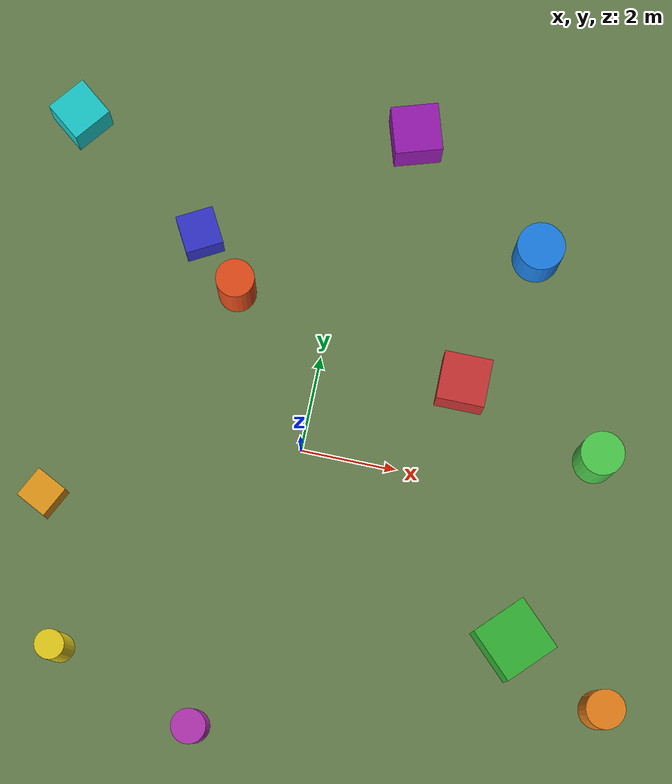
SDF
<?xml version="1.0" ?>
<sdf version="1.9">
  <world name="data_collection">

    <physics name="1ms" type="ignored">
      <max_step_size>0.001</max_step_size>
      <real_time_factor>1.0</real_time_factor>
    </physics>

    <plugin filename="gz-sim-physics-system"        name="gz::sim::systems::Physics"/>
    <plugin filename="gz-sim-sensors-system"         name="gz::sim::systems::Sensors">
      <render_engine>ogre2</render_engine>
    </plugin>
    <plugin filename="gz-sim-scene-broadcaster-system" name="gz::sim::systems::SceneBroadcaster"/>
    <plugin filename="gz-sim-user-commands-system"   name="gz::sim::systems::UserCommands"/>

    <scene>
      <ambient>0.4 0.4 0.4 1</ambient>
      <background>0.53 0.81 0.98 1</background>
      <sky>
        <time>10</time>
        <clouds><speed>12</speed><mean_size>0.5</mean_size></clouds>
      </sky>
      <shadows>true</shadows>
    </scene>

    <light name="sun" type="directional">
      <cast_shadows>true</cast_shadows>
      <diffuse>1.0 0.95 0.85 1</diffuse>
      <specular>0.3 0.3 0.3 1</specular>
      <direction>-0.3 0.1 -0.95</direction>
    </light>

    <!-- Ground -->
    <model name="ground_plane">
      <static>true</static>
      <link name="link">
        <collision name="col">
          <geometry><plane><normal>0 0 1</normal><size>500 500</size></plane></geometry>
        </collision>
        <visual name="vis">
          <geometry><plane><normal>0 0 1</normal><size>500 500</size></plane></geometry>
          <material>
            <ambient>0.4 0.5 0.3 1</ambient>
            <diffuse>0.4 0.5 0.3 1</diffuse>
            <pbr>
              <metal>
                <albedo_map>model://drone_yolo_detection/materials/textures/grass_albedo.png</albedo_map>
                <normal_map>model://drone_yolo_detection/materials/textures/grass_normal.png</normal_map>
                <roughness_map>model://drone_yolo_detection/materials/textures/grass_roughness.png</roughness_map>
                <metalness>0.0</metalness>
              </metal>
            </pbr>
          </material>

        </visual>
      </link>
    </model>

    <!-- ═══ CUBES (label=1) ═══ -->
    <model name="cube_0"><static>true</static><pose>3 2 0.5 0 0 0</pose>
      <link name="link">
        <collision name="col"><geometry><box><size>1 1 1</size></box></geometry></collision>
        <visual name="vis"><geometry><box><size>1 1 1</size></box></geometry>
          <material><ambient>0.8 0.2 0.2 1</ambient><diffuse>0.8 0.2 0.2 1</diffuse></material>
          <meta><label>1</label></meta></visual></link></model>

    <model name="cube_1"><static>true</static><pose>-3 4 0.4 0 0 0.5</pose>
      <link name="link">
        <collision name="col"><geometry><box><size>0.8 0.8 0.8</size></box></geometry></collision>
        <visual name="vis"><geometry><box><size>0.8 0.8 0.8</size></box></geometry>
          <material><ambient>0.2 0.2 0.8 1</ambient><diffuse>0.2 0.2 0.8 1</diffuse></material>
          <meta><label>1</label></meta></visual></link></model>

    <model name="cube_2"><static>true</static><pose>5 -3 0.6 0 0 0.8</pose>
      <link name="link">
        <collision name="col"><geometry><box><size>1.2 1.2 1.2</size></box></geometry></collision>
        <visual name="vis"><geometry><box><size>1.2 1.2 1.2</size></box></geometry>
          <material><ambient>0.2 0.7 0.2 1</ambient><diffuse>0.2 0.7 0.2 1</diffuse></material>
          <meta><label>1</label></meta></visual></link></model>

    <model name="cube_3"><static>true</static><pose>-5 -2 0.35 0 0 1.1</pose>
      <link name="link">
        <collision name="col"><geometry><box><size>0.7 0.7 0.7</size></box></geometry></collision>
        <visual name="vis"><geometry><box><size>0.7 0.7 0.7</size></box></geometry>
          <material><ambient>0.9 0.6 0.1 1</ambient><diffuse>0.9 0.6 0.1 1</diffuse></material>
          <meta><label>1</label></meta></visual></link></model>

    <model name="cube_4"><static>true</static><pose>1 7 0.5 0 0 0.3</pose>
      <link name="link">
        <collision name="col"><geometry><box><size>1 1 1</size></box></geometry></collision>
        <visual name="vis"><geometry><box><size>1 1 1</size></box></geometry>
          <material><ambient>0.6 0.1 0.7 1</ambient><diffuse>0.6 0.1 0.7 1</diffuse></material>
          <meta><label>1</label></meta></visual></link></model>

    <model name="cube_5"><static>true</static><pose>-6 6 0.45 0 0 0.9</pose>
      <link name="link">
        <collision name="col"><geometry><box><size>0.9 0.9 0.9</size></box></geometry></collision>
        <visual name="vis"><geometry><box><size>0.9 0.9 0.9</size></box></geometry>
          <material><ambient>0.1 0.8 0.8 1</ambient><diffuse>0.1 0.8 0.8 1</diffuse></material>
          <meta><label>1</label></meta></visual></link></model>

    <!-- ═══ CYLINDERS (label=2) ═══ -->
    <model name="cylinder_0"><static>true</static><pose>-2 3 0.75 0 0 0</pose>
      <link name="link">
        <collision name="col"><geometry><cylinder><radius>0.4</radius><length>1.5</length></cylinder></geometry></collision>
        <visual name="vis"><geometry><cylinder><radius>0.4</radius><length>1.5</length></cylinder></geometry>
          <material><ambient>0.9 0.3 0.1 1</ambient><diffuse>0.9 0.3 0.1 1</diffuse></material>
          <meta><label>2</label></meta></visual></link></model>

    <model name="cylinder_1"><static>true</static><pose>4 5 0.6 0 0 0</pose>
      <link name="link">
        <collision name="col"><geometry><cylinder><radius>0.5</radius><length>1.2</length></cylinder></geometry></collision>
        <visual name="vis"><geometry><cylinder><radius>0.5</radius><length>1.2</length></cylinder></geometry>
          <material><ambient>0.1 0.5 0.9 1</ambient><diffuse>0.1 0.5 0.9 1</diffuse></material>
          <meta><label>2</label></meta></visual></link></model>

    <model name="cylinder_2"><static>true</static><pose>-4 -5 0.9 0 0 0</pose>
      <link name="link">
        <collision name="col"><geometry><cylinder><radius>0.3</radius><length>1.8</length></cylinder></geometry></collision>
        <visual name="vis"><geometry><cylinder><radius>0.3</radius><length>1.8</length></cylinder></geometry>
          <material><ambient>0.9 0.8 0.1 1</ambient><diffuse>0.9 0.8 0.1 1</diffuse></material>
          <meta><label>2</label></meta></visual></link></model>

    <model name="cylinder_3"><static>true</static><pose>6 1 0.7 0 0 0</pose>
      <link name="link">
        <collision name="col"><geometry><cylinder><radius>0.45</radius><length>1.4</length></cylinder></geometry></collision>
        <visual name="vis"><geometry><cylinder><radius>0.45</radius><length>1.4</length></cylinder></geometry>
          <material><ambient>0.3 0.8 0.3 1</ambient><diffuse>0.3 0.8 0.3 1</diffuse></material>
          <meta><label>2</label></meta></visual></link></model>

    <model name="cylinder_4"><static>true</static><pose>-1 -6 0.8 0 0 0</pose>
      <link name="link">
        <collision name="col"><geometry><cylinder><radius>0.35</radius><length>1.6</length></cylinder></geometry></collision>
        <visual name="vis"><geometry><cylinder><radius>0.35</radius><length>1.6</length></cylinder></geometry>
          <material><ambient>0.7 0.2 0.7 1</ambient><diffuse>0.7 0.2 0.7 1</diffuse></material>
          <meta><label>2</label></meta></visual></link></model>

    <model name="cylinder_5"><static>true</static><pose>7 -4 0.65 0 0 0</pose>
      <link name="link">
        <collision name="col"><geometry><cylinder><radius>0.4</radius><length>1.3</length></cylinder></geometry></collision>
        <visual name="vis"><geometry><cylinder><radius>0.4</radius><length>1.3</length></cylinder></geometry>
          <material><ambient>0.9 0.5 0.1 1</ambient><diffuse>0.9 0.5 0.1 1</diffuse></material>
          <meta><label>2</label></meta></visual></link></model>

    <!-- ═══ Camera rig — static, freely teleportable by set_pose ═══ -->
    <model name="iris">
      <static>true</static>
      <pose>0 0 6 0 0 0</pose>

      <link name="base_link">
        <sensor name="camera_down" type="camera">
          <pose>0 0 0 0 1.5708 0</pose>
          <always_on>true</always_on>
          <update_rate>10</update_rate>
          <camera>
            <horizontal_fov>1.3962634</horizontal_fov>
            <image><width>640</width><height>480</height><format>R8G8B8</format></image>
            <clip><near>0.1</near><far>150</far></clip>
          </camera>
          <topic>/drone/camera/image_raw</topic>
        </sensor>

        <sensor name="seg_camera" type="segmentation_camera">
          <pose>0 0 0 0 1.5708 0</pose>
          <always_on>true</always_on>
          <update_rate>10</update_rate>
          <camera>
            <horizontal_fov>1.3962634</horizontal_fov>
            <image><width>640</width><height>480</height></image>
            <clip><near>0.1</near><far>150</far></clip>
            <segmentation_type>semantic</segmentation_type>
          </camera>
          <topic>/drone/seg_camera</topic>
        </sensor>
      </link>
    </model>

  </world>
</sdf>
